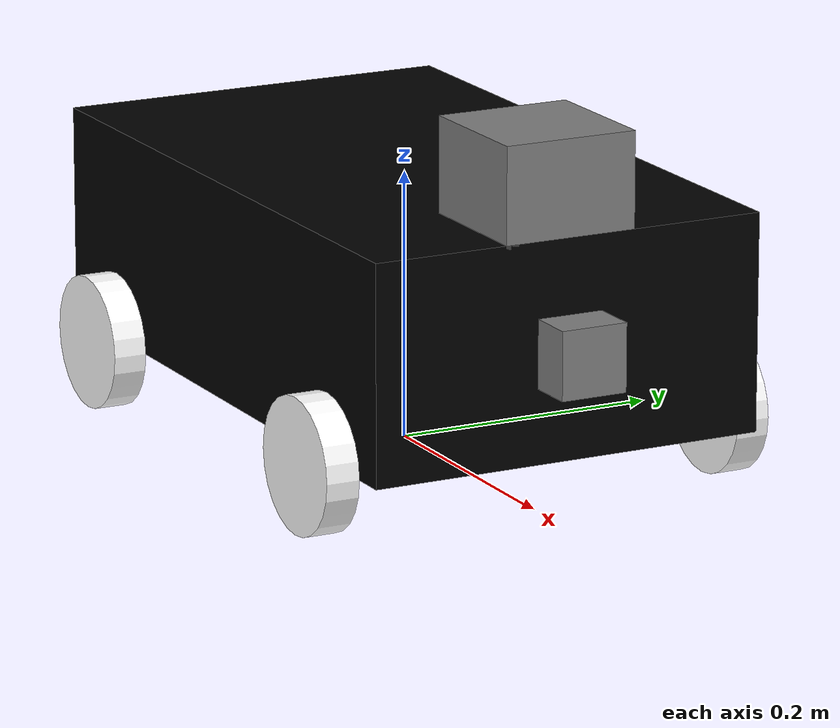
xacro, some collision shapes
<?xml version='1.0'?>

<robot name="project_2" xmlns:xacro="http://www.ros.org/wiki/xacro">
	<xacro:property name="robot_name" value="project_2" />
	<xacro:property name="robot_chassis_mass" value="15"/>
	<xacro:property name="robot_chassis_length" value="0.2"/>
	<xacro:property name="robot_chassis_radius" value="0.25"/>

    <xacro:property name="robot_chassis_w" value="0.3"/>
	<xacro:property name="robot_chassis_l" value="0.5"/>
	<xacro:property name="robot_chassis_h" value="0.16"/>

	<xacro:property name="robot_caster_wheel_radius" value="0.05"/>
	<xacro:property name="robot_caster_wheel_radius_collision" value="0.0499"/>

	<xacro:property name="robot_wheel_mass" value="5"/>
	<xacro:property name="robot_wheel_length" value="0.025"/>
	<xacro:property name="robot_wheel_radius" value="0.05"/>

	<xacro:property name="camera_mass" value="0.1"/>
	<xacro:property name="hokoyu_mass" value="1e-5"/>

    <material name="black">
        <color rgba="0 0 0.0 1"/>
    </material>

    <material name="white">
        <color rgba="1 1 1 1"/>
    </material>

    <material name="gray">
        <color rgba="0.5 0.5 0.5 1"/>
    </material>
	<!-- Make Chassis of Bot -->
	<link name="chassis">
		<pose>0 0 0 0 0 0</pose>

		<inertial>
			<mass value="${robot_chassis_mass}"/>
      		<origin xyz="0.0 0 0" rpy=" 0 0 0"/>

      		<inertia
      			ixx="0.147116667" ixy="0" ixz="0"
      			iyy="0.334951167" iyz="0"
      			izz="0.3978345"
      		/>
		</inertial>

		<collision name="collision">
			<origin xyz="0 0 0" rpy=" 0 0 0"/>
			<geometry>
				<box size="${robot_chassis_l} ${robot_chassis_w} ${robot_chassis_h}"/>
			</geometry>
		</collision>

		<visual name="chassis_visual">
			<origin xyz="0 0 0" rpy=" 0 0 0"/>
			<geometry>
				<box size="${robot_chassis_l} ${robot_chassis_w} ${robot_chassis_h}"/>
			</geometry>
            <material name="black"/>
		</visual>

	</link>

	<!-- Right Wheel Back -->
	<link name="right_wheel_back">
		<inertial>
			<mass value="${robot_wheel_mass}"/>
			<origin xyz="0 0 0" rpy="0 1.5707 1.5707"/>
			<inertia
				ixx="0.1" ixy="0.0" ixz="0.0"
				iyy="0.1" iyz="0.0"
				izz="0.1"
			/>
		</inertial>

		<visual>
			<origin xyz="0 0 0" rpy="0 1.5707 1.5707"/>
			<geometry>
				<cylinder radius="${robot_wheel_radius}" length="${robot_wheel_length}"/>
			</geometry>
            <material name="white"/>
		</visual>

		<collision>
			<origin xyz="0 0 0" rpy="0 1.5707 1.5707"/>
			<geometry>
				<cylinder radius="${robot_wheel_radius}" length="${robot_wheel_length}"/>
			</geometry>
            <material name="white"/>
		</collision>

	</link>

	<!-- Right Wheel Front-->
	<link name="right_wheel_front">
		<inertial>
			<mass value="${robot_wheel_mass}"/>
			<origin xyz="0 0 0" rpy="0 1.5707 1.5707"/>
			<inertia
				ixx="0.1" ixy="0.0" ixz="0.0"
				iyy="0.1" iyz="0.0"
				izz="0.1"
			/>
		</inertial>

		<visual>
			<origin xyz="0 0 0" rpy="0 1.5707 1.5707"/>
			<geometry>
				<cylinder radius="${robot_wheel_radius}" length="${robot_wheel_length}"/>
			</geometry>
            <material name="white"/>
		</visual>

		<collision>
			<origin xyz="0 0 0" rpy="0 1.5707 1.5707"/>
			<geometry>
				<cylinder radius="${robot_wheel_radius}" length="${robot_wheel_length}"/>
			</geometry>
            <material name="white"/>
		</collision>

	</link>

	<!-- Left wheel Back-->
	<link name="left_wheel_back">
		<inertial>
			<mass value="${robot_wheel_mass}"/>
			<origin xyz="0 0 0" rpy="0 1.5707 1.5707"/>
			<inertia
				ixx="0.1" ixy="0.0" ixz="0.0"
				iyy="0.1" iyz="0.0"
				izz="0.1"
			/>
		</inertial>

		<visual>
			<origin xyz="0 0 0" rpy="0 1.5707 1.5707"/>
			<geometry>
				<cylinder radius="${robot_wheel_radius}" length="${robot_wheel_length}"/>
			</geometry>
            <material name="white"/>
		</visual>

		<collision>
			<origin xyz="0 0 0" rpy="0 1.5707 1.5707"/>
			<geometry>
				<cylinder radius="${robot_wheel_radius}" length="${robot_wheel_length}"/>
			</geometry>
            <material name="white"/>
		</collision>

	</link>

	<!-- Left wheel Front-->
	<link name="left_wheel_front">
		<inertial>
			<mass value="${robot_wheel_mass}"/>
			<origin xyz="0 0 0" rpy="0 1.5707 1.5707"/>
			<inertia
				ixx="0.1" ixy="0.0" ixz="0.0"
				iyy="0.1" iyz="0.0"
				izz="0.1"
			/>
		</inertial>

		<visual>
			<origin xyz="0 0 0" rpy="0 1.5707 1.5707"/>
			<geometry>
				<cylinder radius="${robot_wheel_radius}" length="${robot_wheel_length}"/>
			</geometry>
            <material name="white"/>
		</visual>

		<collision>
			<origin xyz="0 0 0" rpy="0 1.5707 1.5707"/>
			<geometry>
				<cylinder radius="${robot_wheel_radius}" length="${robot_wheel_length}"/>
			</geometry>
            <material name="white"/>
		</collision>

	</link>

	<!-- Camera -->
	<link name="camera">
		<inertial>
			<mass value="${camera_mass}"/>
			<origin xyz="0 0 0" rpy="0 0 0"/>
			<inertia
		        ixx="1e-6" ixy="0.0" ixz="0.0"
		        iyy="1e-6" iyz="0.0"
		        izz="1e-6"
		      />
		</inertial>

		<visual>
			<origin xyz="0 0 0" rpy="0 0 0"/>
			<geometry>
				<box size="0.05 0.05 0.05"/>
			</geometry>
            <material name="gray"/>
		</visual>

		<collision>
			<origin xyz="0 0 0" rpy="0 0 0"/>
			<geometry>
				<box size="0.05 0.05 0.05"/>
			</geometry>
            <material name="gray"/>
		</collision>
	</link>

	<!-- Hokuyo Lidar -->
	<link name="hokuyo">
		<inertial>
			<mass value="${hokoyu_mass}"/>
			<origin xyz="0 0 0" rpy="0 0 0"/>

			<inertia
		        ixx="1e-6" ixy="0.0" ixz="0.0"
		        iyy="1e-6" iyz="0.0"
		        izz="1e-6"
		      />
		</inertial>

		<visual>
			<origin xyz="0 0 0" rpy="0 0 3.1415"/>
			<geometry>
				<mesh filename="package://project_2/meshes/sensors/lds.stl" scale="0.001 0.001 0.001"/>
			</geometry>
            <material name="gray"/>
		</visual>

		<collision>
			<origin xyz="0 0 0" rpy="0 0 0"/>
			<geometry>
				<box size="0.1 0.1 0.1"/>
			</geometry>
            <material name="gray"/>
		</collision>
	</link>

	<!-- Project center to the ground -->
	<link name="robot_footprint"></link>

	<!-- Define Joints -->

	<!-- Right Wheel Joint Back-->
	<joint type="continuous" name="right_wheel_hinge_back">
	    <origin xyz="-${(robot_chassis_l - 0.15)/ 2} -${(robot_chassis_w / 2)+(robot_wheel_length / 2)} -${robot_chassis_h /2}" rpy="0 0 0" />
	    <parent link="chassis"/>
	    <child link="right_wheel_back" />
	    <axis xyz="0 1 0" rpy="0 0 0" />
	    <limit effort="10000" velocity="1000" />
	    <dynamics damping="1.0" friction="1.0" />
	</joint>

	<!-- Right Wheel Joint Front-->
	<joint type="continuous" name="right_wheel_hinge_front">
	    <origin xyz="${(robot_chassis_l - 0.15)/ 2} -${(robot_chassis_w / 2)+(robot_wheel_length / 2)} -${robot_chassis_h /2}" rpy="0 0 0" />
	    <parent link="chassis"/>
	    <child link="right_wheel_front" />
	    <axis xyz="0 1 0" rpy="0 0 0" />
	    <limit effort="10000" velocity="1000" />
	    <dynamics damping="1.0" friction="1.0" />
	</joint>

	<!-- Left Wheel Joint Back-->
	<joint type="continuous" name="left_wheel_hinge_back">
	    <origin xyz="-${(robot_chassis_l - 0.15)/ 2} ${(robot_chassis_w / 2)+(robot_wheel_length / 2)} -${robot_chassis_h /2}" rpy="0 0 0" />
	    <parent link="chassis"/>
	    <child link="left_wheel_back" />
	    <axis xyz="0 1 0" rpy="0 0 0" />
	    <limit effort="10000" velocity="1000" />
	    <dynamics damping="1.0" friction="1.0" />
	</joint>

	<!-- Left Wheel Joint Front-->
	<joint type="continuous" name="left_wheel_hinge_front">
	    <origin xyz="${(robot_chassis_l - 0.15)/ 2} ${(robot_chassis_w / 2)+(robot_wheel_length / 2)} -${robot_chassis_h /2}" rpy="0 0 0" />
	    <parent link="chassis"/>
	    <child link="left_wheel_front" />
	    <axis xyz="0 1 0" rpy="0 0 0" />
	    <limit effort="10000" velocity="1000" />
	    <dynamics damping="1.0" friction="1.0" />
	</joint>

	<!-- Camera Joint -->
	<joint name="camera_joint" type="fixed">
		<origin xyz="0.26 0 0" rpy="0 0 0" />
		<parent link="chassis"/>
		<child link="camera" />
		<axis xyz="0 1 0"/>
	</joint>

	<!-- Hokoyu Joint -->
	<joint name="hokuyo_joint" type="fixed">
	    <origin xyz="0.2 0 ${robot_chassis_h /2 + 0.02}" rpy="0 0 0" />
	    <parent link="chassis"/>
	    <child link="hokuyo" />
	    <axis xyz="0 1 0"/>
	</joint>

	<joint name="robot_footprint_joint" type="fixed">
		<origin xyz="0 0 ${robot_chassis_h /2 + robot_wheel_radius}" rpy="0 0 0" />
		<parent link="robot_footprint"/>
		<child link="chassis" />
	</joint>

	<!-- Color of bot -->
	<gazebo reference="left_wheel_front">
		<material>Gazebo/White</material>
		<kp>1000000.0</kp> <!-- kp and kd for rubber -->
		<kd>100.0</kd>
		<mu1>1.0</mu1>
		<mu2>1.0</mu2>
		<maxVel>1.0</maxVel>
		<minDepth>0.00</minDepth>
	</gazebo>

	<gazebo reference="left_wheel_back">
		<material>Gazebo/White</material>
		<kp>1000000.0</kp> <!-- kp and kd for rubber -->
		<kd>100.0</kd>
		<mu1>1.0</mu1>
		<mu2>1.0</mu2>
		<maxVel>1.0</maxVel>
		<minDepth>0.00</minDepth>
	</gazebo>

	<gazebo reference="right_wheel_front">
		<material>Gazebo/White</material>
		<kp>1000000.0</kp> <!-- kp and kd for rubber -->
		<kd>100.0</kd>
		<mu1>1.0</mu1>
		<mu2>1.0</mu2>
		<maxVel>1.0</maxVel>
		<minDepth>0.00</minDepth>
	</gazebo>
	<gazebo reference="right_wheel_back">
		<material>Gazebo/White</material>
		<kp>1000000.0</kp> <!-- kp and kd for rubber -->
		<kd>100.0</kd>
		<mu1>1.0</mu1>
		<mu2>1.0</mu2>
		<maxVel>1.0</maxVel>
		<minDepth>0.00</minDepth>
	</gazebo>

	<gazebo reference="camera">
		<material>Gazebo/Gray</material>
	</gazebo>

	<gazebo reference="hokuyo">
		<material>Gazebo/Gray</material>
	</gazebo>

	<gazebo reference="chassis">
		<material>Gazebo/Black</material>
	</gazebo>

	<!-- Motor, Camera and Lidar Simulation -->
	<xacro:include filename="$(find project_2)/robot_description/urdf/base.gazebo" />

</robot>
